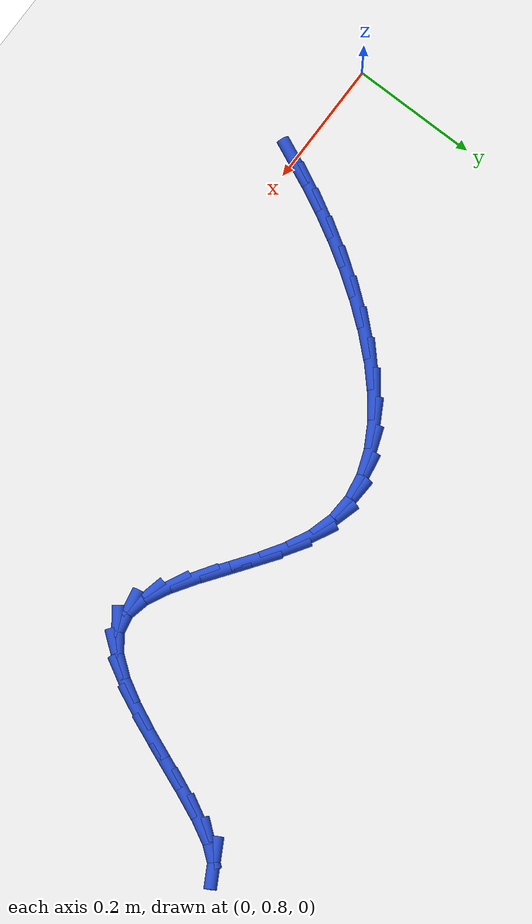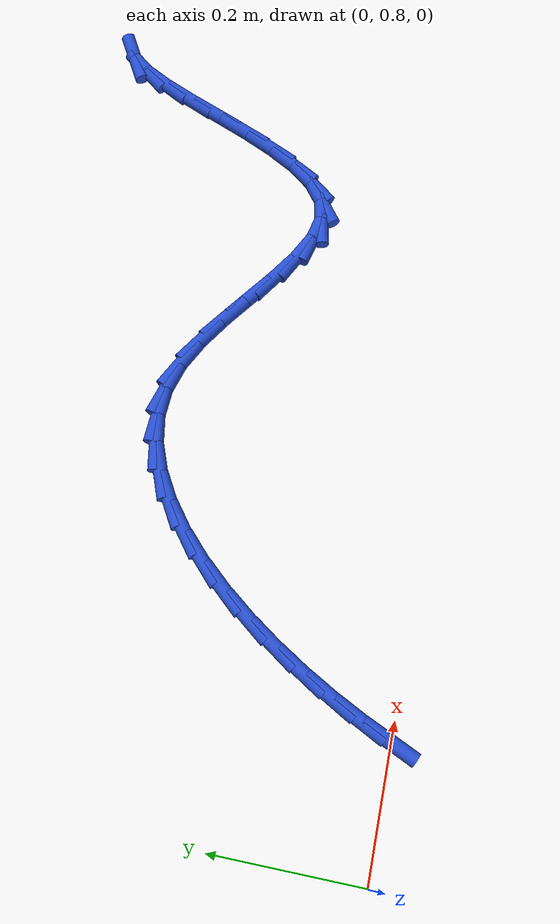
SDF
<sdf version="1.6">
 <world name="default">
  <model name="ground_plane">
   <static>1</static>
   <link name="link">
    <collision name="collision">
     <geometry><plane><normal>0 0 1</normal><size>100 100</size></plane></geometry>
     <surface><friction><ode><mu>100</mu><mu2>50</mu2></ode></friction></surface>
    </collision>
    <visual name="visual">
     <cast_shadows>0</cast_shadows>
     <geometry><plane><normal>0 0 1</normal><size>100 100</size></plane></geometry>
     <material>
      <script><uri>file://media/materials/scripts/gazebo.material</uri><name>Gazebo/WhiteGlow</name></script>
     </material>
    </visual>
   </link>
  </model>
  <model name="line">
   <link name="link_20">
    <pose>0.1733568010506653 0.8032812668150782 0.01 0 1.57 1.1491159196537508</pose>
    <collision name="collision">
     <geometry><cylinder><radius>0.01</radius><length>0.08</length></cylinder></geometry>
    </collision>
    <visual name="visual">
     <material>
      <script><name>Gazebo/Blue</name><uri>file://media/materials/scripts/gazebo.material</uri></script>
     </material>
     <geometry><cylinder><radius>0.01</radius><length>0.08</length></cylinder></geometry>
    </visual>
   </link>
   <link name="link_21">
    <pose>0.19162403263924385 0.8440027460787939 0.01 0 1.57 1.1057573735704194</pose>
    <collision name="collision">
     <geometry><cylinder><radius>0.01</radius><length>0.08</length></cylinder></geometry>
    </collision>
    <visual name="visual">
     <material>
      <script><name>Gazebo/Blue</name><uri>file://media/materials/scripts/gazebo.material</uri></script>
     </material>
     <geometry><cylinder><radius>0.01</radius><length>0.08</length></cylinder></geometry>
    </visual>
   </link>
   <link name="link_22">
    <pose>0.2122580118920463 0.8851275579851934 0.01 0 1.57 1.061177169240294</pose>
    <collision name="collision">
     <geometry><cylinder><radius>0.01</radius><length>0.08</length></cylinder></geometry>
    </collision>
    <visual name="visual">
     <material>
      <script><name>Gazebo/Blue</name><uri>file://media/materials/scripts/gazebo.material</uri></script>
     </material>
     <geometry><cylinder><radius>0.01</radius><length>0.08</length></cylinder></geometry>
    </visual>
   </link>
   <link name="link_23">
    <pose>0.2354688289096542 0.9266600813192621 0.01 0 1.57 1.014197760810383</pose>
    <collision name="collision">
     <geometry><cylinder><radius>0.01</radius><length>0.08</length></cylinder></geometry>
    </collision>
    <visual name="visual">
     <material>
      <script><name>Gazebo/Blue</name><uri>file://media/materials/scripts/gazebo.material</uri></script>
     </material>
     <geometry><cylinder><radius>0.01</radius><length>0.08</length></cylinder></geometry>
    </visual>
   </link>
   <link name="link_24">
    <pose>0.26121883924322 0.9680440958801244 0.01 0 1.57 0.9622163802211118</pose>
    <collision name="collision">
     <geometry><cylinder><radius>0.01</radius><length>0.08</length></cylinder></geometry>
    </collision>
    <visual name="visual">
     <material>
      <script><name>Gazebo/Blue</name><uri>file://media/materials/scripts/gazebo.material</uri></script>
     </material>
     <geometry><cylinder><radius>0.01</radius><length>0.08</length></cylinder></geometry>
    </visual>
   </link>
   <link name="link_25">
    <pose>0.2893073265799867 1.0083543658340808 0.01 0 1.57 0.9027844205554127</pose>
    <collision name="collision">
     <geometry><cylinder><radius>0.01</radius><length>0.08</length></cylinder></geometry>
    </collision>
    <visual name="visual">
     <material>
      <script><name>Gazebo/Blue</name><uri>file://media/materials/scripts/gazebo.material</uri></script>
     </material>
     <geometry><cylinder><radius>0.01</radius><length>0.08</length></cylinder></geometry>
    </visual>
   </link>
   <link name="link_26">
    <pose>0.31953070725112087 1.0466591668018799 0.01 0 1.57 0.8329453561516905</pose>
    <collision name="collision">
     <geometry><cylinder><radius>0.01</radius><length>0.08</length></cylinder></geometry>
    </collision>
    <visual name="visual">
     <material>
      <script><name>Gazebo/Blue</name><uri>file://media/materials/scripts/gazebo.material</uri></script>
     </material>
     <geometry><cylinder><radius>0.01</radius><length>0.08</length></cylinder></geometry>
    </visual>
   </link>
   <link name="link_27">
    <pose>0.3516853975877889 1.0820267744042702 0.01 0 1.57 0.7489553550305024</pose>
    <collision name="collision">
     <geometry><cylinder><radius>0.01</radius><length>0.08</length></cylinder></geometry>
    </collision>
    <visual name="visual">
     <material>
      <script><name>Gazebo/Blue</name><uri>file://media/materials/scripts/gazebo.material</uri></script>
     </material>
     <geometry><cylinder><radius>0.01</radius><length>0.08</length></cylinder></geometry>
    </visual>
   </link>
   <link name="link_28">
    <pose>0.38556781392115735 1.1135254642620007 0.01 0 1.57 0.6460832516018167</pose>
    <collision name="collision">
     <geometry><cylinder><radius>0.01</radius><length>0.08</length></cylinder></geometry>
    </collision>
    <visual name="visual">
     <material>
      <script><name>Gazebo/Blue</name><uri>file://media/materials/scripts/gazebo.material</uri></script>
     </material>
     <geometry><cylinder><radius>0.01</radius><length>0.08</length></cylinder></geometry>
    </visual>
   </link>
   <link name="link_29">
    <pose>0.4209743725823928 1.1402235119958195 0.01 0 1.57 0.5187099812458319</pose>
    <collision name="collision">
     <geometry><cylinder><radius>0.01</radius><length>0.08</length></cylinder></geometry>
    </collision>
    <visual name="visual">
     <material>
      <script><name>Gazebo/Blue</name><uri>file://media/materials/scripts/gazebo.material</uri></script>
     </material>
     <geometry><cylinder><radius>0.01</radius><length>0.08</length></cylinder></geometry>
    </visual>
   </link>
   <link name="link_30">
    <pose>0.45770148990266124 1.1611891932264757 0.01 0 1.57 0.3613178272862656</pose>
    <collision name="collision">
     <geometry><cylinder><radius>0.01</radius><length>0.08</length></cylinder></geometry>
    </collision>
    <visual name="visual">
     <material>
      <script><name>Gazebo/Blue</name><uri>file://media/materials/scripts/gazebo.material</uri></script>
     </material>
     <geometry><cylinder><radius>0.01</radius><length>0.08</length></cylinder></geometry>
    </visual>
   </link>
   <link name="link_31">
    <pose>0.4955455822131299 1.1754907835747186 0.01 0 1.57 0.17132273776619258</pose>
    <collision name="collision">
     <geometry><cylinder><radius>0.01</radius><length>0.08</length></cylinder></geometry>
    </collision>
    <visual name="visual">
     <material>
      <script><name>Gazebo/Blue</name><uri>file://media/materials/scripts/gazebo.material</uri></script>
     </material>
     <geometry><cylinder><radius>0.01</radius><length>0.08</length></cylinder></geometry>
    </visual>
   </link>
   <link name="link_32">
    <pose>0.5343030658449643 1.1821965586612957 0.01 0 1.57 -0.04612610356052276</pose>
    <collision name="collision">
     <geometry><cylinder><radius>0.01</radius><length>0.08</length></cylinder></geometry>
    </collision>
    <visual name="visual">
     <material>
      <script><name>Gazebo/Blue</name><uri>file://media/materials/scripts/gazebo.material</uri></script>
     </material>
     <geometry><cylinder><radius>0.01</radius><length>0.08</length></cylinder></geometry>
    </visual>
   </link>
   <link name="link_33">
    <pose>0.5737703571293319 1.1803747941069567 0.01 0 1.57 -0.27423346381484426</pose>
    <collision name="collision">
     <geometry><cylinder><radius>0.01</radius><length>0.08</length></cylinder></geometry>
    </collision>
    <visual name="visual">
     <material>
      <script><name>Gazebo/Blue</name><uri>file://media/materials/scripts/gazebo.material</uri></script>
     </material>
     <geometry><cylinder><radius>0.01</radius><length>0.08</length></cylinder></geometry>
    </visual>
   </link>
   <link name="link_34">
    <pose>0.613741920430834 1.1691299445251104 0.01 0 1.57 -0.46064967516766686</pose>
    <collision name="collision">
     <geometry><cylinder><radius>0.01</radius><length>0.08</length></cylinder></geometry>
    </collision>
    <visual name="visual">
     <material>
      <script><name>Gazebo/Blue</name><uri>file://media/materials/scripts/gazebo.material</uri></script>
     </material>
     <geometry><cylinder><radius>0.01</radius><length>0.08</length></cylinder></geometry>
    </visual>
   </link>
   <link name="link_35">
    <pose>0.6539246837381176 1.1491889195243044 0.01 0 1.57 -0.5707539028939539</pose>
    <collision name="collision">
     <geometry><cylinder><radius>0.01</radius><length>0.08</length></cylinder></geometry>
    </collision>
    <visual name="visual">
     <material>
      <script><name>Gazebo/Blue</name><uri>file://media/materials/scripts/gazebo.material</uri></script>
     </material>
     <geometry><cylinder><radius>0.01</radius><length>0.08</length></cylinder></geometry>
    </visual>
   </link>
   <link name="link_36">
    <pose>0.6939046196394448 1.1235204932111964 0.01 0 1.57 -0.6228150052060327</pose>
    <collision name="collision">
     <geometry><cylinder><radius>0.01</radius><length>0.08</length></cylinder></geometry>
    </collision>
    <visual name="visual">
     <material>
      <script><name>Gazebo/Blue</name><uri>file://media/materials/scripts/gazebo.material</uri></script>
     </material>
     <geometry><cylinder><radius>0.01</radius><length>0.08</length></cylinder></geometry>
    </visual>
   </link>
   <link name="link_37">
    <pose>0.7332588450904327 1.095257575633189 0.01 0 1.57 -0.6265020345457875</pose>
    <collision name="collision">
     <geometry><cylinder><radius>0.01</radius><length>0.08</length></cylinder></geometry>
    </collision>
    <visual name="visual">
     <material>
      <script><name>Gazebo/Blue</name><uri>file://media/materials/scripts/gazebo.material</uri></script>
     </material>
     <geometry><cylinder><radius>0.01</radius><length>0.08</length></cylinder></geometry>
    </visual>
   </link>
   <link name="link_38">
    <pose>0.7715644770466997 1.0675330768376834 0.01 0 1.57 -0.5784901718930553</pose>
    <collision name="collision">
     <geometry><cylinder><radius>0.01</radius><length>0.08</length></cylinder></geometry>
    </collision>
    <visual name="visual">
     <material>
      <script><name>Gazebo/Blue</name><uri>file://media/materials/scripts/gazebo.material</uri></script>
     </material>
     <geometry><cylinder><radius>0.01</radius><length>0.08</length></cylinder></geometry>
    </visual>
   </link>
   <link name="link_39">
    <pose>0.8083986324638647 1.0434799068720815 0.01 0 1.57 -0.4585754483207538</pose>
    <collision name="collision">
     <geometry><cylinder><radius>0.01</radius><length>0.08</length></cylinder></geometry>
    </collision>
    <visual name="visual">
     <material>
      <script><name>Gazebo/Blue</name><uri>file://media/materials/scripts/gazebo.material</uri></script>
     </material>
     <geometry><cylinder><radius>0.01</radius><length>0.08</length></cylinder></geometry>
    </visual>
   </link>
   <link name="link_40">
    <pose>0.843338428297545 1.0262309757837849 0.01 0 1.57 -0.22048881653023114</pose>
    <collision name="collision">
     <geometry><cylinder><radius>0.01</radius><length>0.08</length></cylinder></geometry>
    </collision>
    <visual name="visual">
     <material>
      <script><name>Gazebo/Blue</name><uri>file://media/materials/scripts/gazebo.material</uri></script>
     </material>
     <geometry><cylinder><radius>0.01</radius><length>0.08</length></cylinder></geometry>
    </visual>
   </link>
   <link name="link_41">
    <pose>0.8759609815033594 1.0189191936201951 0.01 0 1.57 0.18958945562480917</pose>
    <collision name="collision">
     <geometry><cylinder><radius>0.01</radius><length>0.08</length></cylinder></geometry>
    </collision>
    <visual name="visual">
     <material>
      <script><name>Gazebo/Blue</name><uri>file://media/materials/scripts/gazebo.material</uri></script>
     </material>
     <geometry><cylinder><radius>0.01</radius><length>0.08</length></cylinder></geometry>
    </visual>
   </link>
   <link name="link_42">
    <pose>0.905846587933181 1.0246540664240622 0.01 0 1.57 0.6322822355981306</pose>
    <collision name="collision">
     <geometry><cylinder><radius>0.01</radius><length>0.08</length></cylinder></geometry>
    </collision>
    <visual name="visual">
     <material>
      <script><name>Gazebo/Blue</name><uri>file://media/materials/scripts/gazebo.material</uri></script>
     </material>
     <geometry><cylinder><radius>0.01</radius><length>0.08</length></cylinder></geometry>
    </visual>
   </link>
   <link name="link_43">
    <pose>0.9328607805464052 1.0444450975783952 0.01 0 1.57 0.9035906401974453</pose>
    <collision name="collision">
     <geometry><cylinder><radius>0.01</radius><length>0.08</length></cylinder></geometry>
    </collision>
    <visual name="visual">
     <material>
      <script><name>Gazebo/Blue</name><uri>file://media/materials/scripts/gazebo.material</uri></script>
     </material>
     <geometry><cylinder><radius>0.01</radius><length>0.08</length></cylinder></geometry>
    </visual>
   </link>
   <link name="link_44">
    <pose>0.9573763223565704 1.0755674079657898 0.01 0 1.57 1.0524252334753903</pose>
    <collision name="collision">
     <geometry><cylinder><radius>0.01</radius><length>0.08</length></cylinder></geometry>
    </collision>
    <visual name="visual">
     <material>
      <script><name>Gazebo/Blue</name><uri>file://media/materials/scripts/gazebo.material</uri></script>
     </material>
     <geometry><cylinder><radius>0.01</radius><length>0.08</length></cylinder></geometry>
    </visual>
   </link>
   <link name="link_45">
    <pose>0.9798182201458758 1.1149114838955188 0.01 0 1.57 1.1333018410664129</pose>
    <collision name="collision">
     <geometry><cylinder><radius>0.01</radius><length>0.08</length></cylinder></geometry>
    </collision>
    <visual name="visual">
     <material>
      <script><name>Gazebo/Blue</name><uri>file://media/materials/scripts/gazebo.material</uri></script>
     </material>
     <geometry><cylinder><radius>0.01</radius><length>0.08</length></cylinder></geometry>
    </visual>
   </link>
   <link name="link_46">
    <pose>1.0006114806965225 1.1593678116768582 0.01 0 1.57 1.17212912287952</pose>
    <collision name="collision">
     <geometry><cylinder><radius>0.01</radius><length>0.08</length></cylinder></geometry>
    </collision>
    <visual name="visual">
     <material>
      <script><name>Gazebo/Blue</name><uri>file://media/materials/scripts/gazebo.material</uri></script>
     </material>
     <geometry><cylinder><radius>0.01</radius><length>0.08</length></cylinder></geometry>
    </visual>
   </link>
   <link name="link_47">
    <pose>1.02018111079071 1.2058268776190812 0.01 0 1.57 1.1783706883098528</pose>
    <collision name="collision">
     <geometry><cylinder><radius>0.01</radius><length>0.08</length></cylinder></geometry>
    </collision>
    <visual name="visual">
     <material>
      <script><name>Gazebo/Blue</name><uri>file://media/materials/scripts/gazebo.material</uri></script>
     </material>
     <geometry><cylinder><radius>0.01</radius><length>0.08</length></cylinder></geometry>
    </visual>
   </link>
   <link name="link_48">
    <pose>1.0389521172106395 1.2511791680314632 0.01 0 1.57 1.150245571902516</pose>
    <collision name="collision">
     <geometry><cylinder><radius>0.01</radius><length>0.08</length></cylinder></geometry>
    </collision>
    <visual name="visual">
     <material>
      <script><name>Gazebo/Blue</name><uri>file://media/materials/scripts/gazebo.material</uri></script>
     </material>
     <geometry><cylinder><radius>0.01</radius><length>0.08</length></cylinder></geometry>
    </visual>
   </link>
   <link name="link_49">
    <pose>1.0573495067385108 1.2923151692232775 0.01 0 1.57 1.0712934029688055</pose>
    <collision name="collision">
     <geometry><cylinder><radius>0.01</radius><length>0.08</length></cylinder></geometry>
    </collision>
    <visual name="visual">
     <material>
      <script><name>Gazebo/Blue</name><uri>file://media/materials/scripts/gazebo.material</uri></script>
     </material>
     <geometry><cylinder><radius>0.01</radius><length>0.08</length></cylinder></geometry>
    </visual>
   </link>
   <link name="link_50">
    <pose>1.0757982861565247 1.3261253675037996 0.01 0 1.57 0.8902815790380342</pose>
    <collision name="collision">
     <geometry><cylinder><radius>0.01</radius><length>0.08</length></cylinder></geometry>
    </collision>
    <visual name="visual">
     <material>
      <script><name>Gazebo/Blue</name><uri>file://media/materials/scripts/gazebo.material</uri></script>
     </material>
     <geometry><cylinder><radius>0.01</radius><length>0.08</length></cylinder></geometry>
    </visual>
   </link>
   <link name="link_51">
    <pose>1.0947232876188209 1.349503620108984 0.01 0 1.57 0.5084205048175772</pose>
    <collision name="collision">
     <geometry><cylinder><radius>0.01</radius><length>0.08</length></cylinder></geometry>
    </collision>
    <visual name="visual">
     <material>
      <script><name>Gazebo/Blue</name><uri>file://media/materials/scripts/gazebo.material</uri></script>
     </material>
     <geometry><cylinder><radius>0.01</radius><length>0.08</length></cylinder></geometry>
    </visual>
   </link>
  </model>
 </world>
</sdf>
